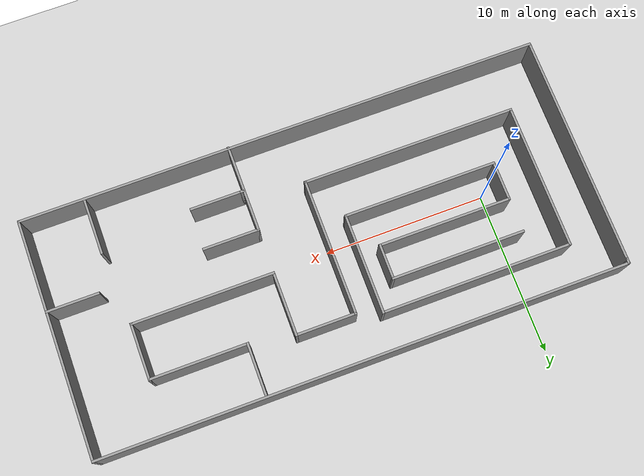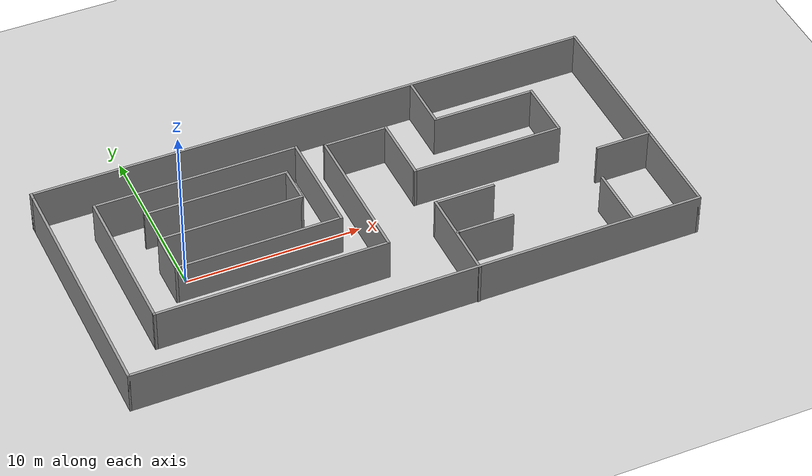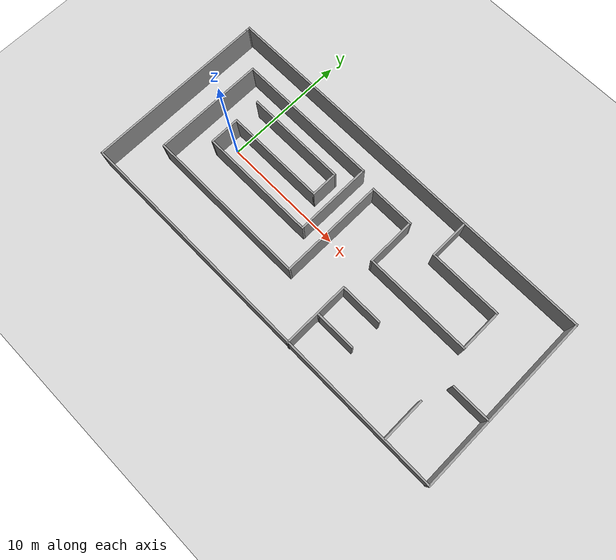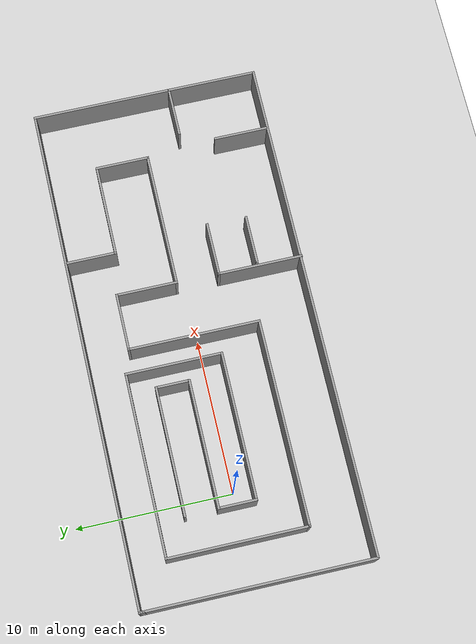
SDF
<sdf version="1.7">
 <world name="default">
  <light name="sun" type="directional">
   <pose>0 0 10 0 -0 0</pose>
   <diffuse>0.8 0.8 0.8 1</diffuse>
   <specular>0.2 0.2 0.2 1</specular>
   <attenuation>
    <range>1000</range>
    <constant>0.9</constant>
    <linear>0.01</linear>
    <quadratic>0.001</quadratic>
   </attenuation>
   <direction>-0.5 0.1 -0.9</direction>
   <spot><inner_angle>0</inner_angle><outer_angle>0</outer_angle><falloff>0</falloff></spot>
  </light>
  <model name="ground_plane">
   <static>1</static>
   <link name="link">
    <collision name="collision">
     <geometry><plane><normal>0 0 1</normal><size>100 100</size></plane></geometry>
     <surface>
      <contact><collide_bitmask>65535</collide_bitmask></contact>
      <friction><ode><mu>100</mu><mu2>50</mu2></ode></friction>
     </surface>
    </collision>
    <visual name="visual">
     <cast_shadows>0</cast_shadows>
     <geometry><plane><normal>0 0 1</normal><size>100 100</size></plane></geometry>
     <material>
      <script><uri>file://media/materials/scripts/gazebo.material</uri><name>Gazebo/Grey</name></script>
     </material>
    </visual>
   </link>
  </model>
  <gravity>0 0 -9.8</gravity>
  <magnetic_field>6e-06 2.3e-05 -4.2e-05</magnetic_field>
  <atmosphere type="adiabatic"/>
  <physics type="ode">
   <max_step_size>0.001</max_step_size>
   <real_time_factor>1</real_time_factor>
   <real_time_update_rate>1000</real_time_update_rate>
  </physics>
  <scene><ambient>0.4 0.4 0.4 1</ambient><background>0.7 0.7 0.7 1</background><shadows>1</shadows></scene>
  <spherical_coordinates>
   <surface_model>EARTH_WGS84</surface_model>
   <latitude_deg>0</latitude_deg>
   <longitude_deg>0</longitude_deg>
   <elevation>0</elevation>
   <heading_deg>0</heading_deg>
  </spherical_coordinates>
  <model name="Kobuki_maze">
   <pose>10.251 -0.20257 -0 0 -0 0</pose>
   <link name="Wall_10">
    <collision name="Wall_10_Collision">
     <geometry><box><size>3.5 0.15 2.5</size></box></geometry>
     <pose>0 0 1.25 0 -0 0</pose>
    </collision>
    <visual name="Wall_10_Visual">
     <pose>0 0 1.25 0 -0 0</pose>
     <geometry><box><size>3.5 0.15 2.5</size></box></geometry>
     <material>
      <script><uri>file://media/materials/scripts/gazebo.material</uri><name>Gazebo/Grey</name></script>
      <ambient>1 1 1 1</ambient>
     </material>
     <meta><layer>0</layer></meta>
    </visual>
    <pose>11.8634 2.43443 0 0 -0 -1.5708</pose>
   </link>
   <link name="Wall_11">
    <collision name="Wall_11_Collision">
     <geometry><box><size>8.75 0.15 2.5</size></box></geometry>
     <pose>0 0 1.25 0 -0 0</pose>
    </collision>
    <visual name="Wall_11_Visual">
     <pose>0 0 1.25 0 -0 0</pose>
     <geometry><box><size>8.75 0.15 2.5</size></box></geometry>
     <material>
      <script><uri>file://media/materials/scripts/gazebo.material</uri><name>Gazebo/Grey</name></script>
      <ambient>1 1 1 1</ambient>
     </material>
     <meta><layer>0</layer></meta>
    </visual>
    <pose>7.56341 0.759428 0 0 -0 3.14159</pose>
   </link>
   <link name="Wall_12">
    <collision name="Wall_12_Collision">
     <geometry><box><size>4 0.15 2.5</size></box></geometry>
     <pose>0 0 1.25 0 -0 0</pose>
    </collision>
    <visual name="Wall_12_Visual">
     <pose>0 0 1.25 0 -0 0</pose>
     <geometry><box><size>4 0.15 2.5</size></box></geometry>
     <material>
      <script><uri>file://media/materials/scripts/gazebo.material</uri><name>Gazebo/Grey</name></script>
      <ambient>1 1 1 1</ambient>
     </material>
     <meta><layer>0</layer></meta>
    </visual>
    <pose>3.26341 2.68443 0 0 -0 1.5708</pose>
   </link>
   <link name="Wall_13">
    <collision name="Wall_13_Collision">
     <geometry><box><size>3.75 0.15 2.5</size></box></geometry>
     <pose>0 0 1.25 0 -0 0</pose>
    </collision>
    <visual name="Wall_13_Visual">
     <pose>0 0 1.25 0 -0 0</pose>
     <geometry><box><size>3.75 0.15 2.5</size></box></geometry>
     <material>
      <script><uri>file://media/materials/scripts/gazebo.material</uri><name>Gazebo/Grey</name></script>
      <ambient>1 1 1 1</ambient>
     </material>
     <meta><layer>0</layer></meta>
    </visual>
    <pose>1.46341 4.60943 0 0 -0 3.14159</pose>
   </link>
   <link name="Wall_14">
    <collision name="Wall_14_Collision">
     <geometry><box><size>8.5 0.15 2.5</size></box></geometry>
     <pose>0 0 1.25 0 -0 0</pose>
    </collision>
    <visual name="Wall_14_Visual">
     <pose>0 0 1.25 0 -0 0</pose>
     <geometry><box><size>8.5 0.15 2.5</size></box></geometry>
     <material>
      <script><uri>file://media/materials/scripts/gazebo.material</uri><name>Gazebo/Grey</name></script>
      <ambient>1 1 1 1</ambient>
     </material>
     <meta><layer>0</layer></meta>
    </visual>
    <pose>-0.336591 0.434428 0 0 -0 -1.5708</pose>
   </link>
   <link name="Wall_15">
    <collision name="Wall_15_Collision">
     <geometry><box><size>13.25 0.15 2.5</size></box></geometry>
     <pose>0 0 1.25 0 -0 0</pose>
    </collision>
    <visual name="Wall_15_Visual">
     <pose>0 0 1.25 0 -0 0</pose>
     <geometry><box><size>13.25 0.15 2.5</size></box></geometry>
     <material>
      <script><uri>file://media/materials/scripts/gazebo.material</uri><name>Gazebo/Grey</name></script>
      <ambient>1 1 1 1</ambient>
     </material>
     <meta><layer>0</layer></meta>
    </visual>
    <pose>-6.88659 -3.74057 0 0 -0 3.14159</pose>
   </link>
   <link name="Wall_16">
    <collision name="Wall_16_Collision">
     <geometry><box><size>9 0.15 2.5</size></box></geometry>
     <pose>0 0 1.25 0 -0 0</pose>
    </collision>
    <visual name="Wall_16_Visual">
     <pose>0 0 1.25 0 -0 0</pose>
     <geometry><box><size>9 0.15 2.5</size></box></geometry>
     <material>
      <script><uri>file://media/materials/scripts/gazebo.material</uri><name>Gazebo/Grey</name></script>
      <ambient>1 1 1 1</ambient>
     </material>
     <meta><layer>0</layer></meta>
    </visual>
    <pose>-13.4366 0.684428 0 0 -0 1.5708</pose>
   </link>
   <link name="Wall_17">
    <collision name="Wall_17_Collision">
     <geometry><box><size>11.75 0.15 2.5</size></box></geometry>
     <pose>0 0 1.25 0 -0 0</pose>
    </collision>
    <visual name="Wall_17_Visual">
     <pose>0 0 1.25 0 -0 0</pose>
     <geometry><box><size>11.75 0.15 2.5</size></box></geometry>
     <material>
      <script><uri>file://media/materials/scripts/gazebo.material</uri><name>Gazebo/Grey</name></script>
      <ambient>1 1 1 1</ambient>
     </material>
     <meta><layer>0</layer></meta>
    </visual>
    <pose>-7.63659 5.10943 0 0 -0 0</pose>
   </link>
   <link name="Wall_18">
    <collision name="Wall_18_Collision">
     <geometry><box><size>6.25 0.15 2.5</size></box></geometry>
     <pose>0 0 1.25 0 -0 0</pose>
    </collision>
    <visual name="Wall_18_Visual">
     <pose>0 0 1.25 0 -0 0</pose>
     <geometry><box><size>6.25 0.15 2.5</size></box></geometry>
     <material>
      <script><uri>file://media/materials/scripts/gazebo.material</uri><name>Gazebo/Grey</name></script>
      <ambient>1 1 1 1</ambient>
     </material>
     <meta><layer>0</layer></meta>
    </visual>
    <pose>-1.83659 2.05943 0 0 -0 -1.5708</pose>
   </link>
   <link name="Wall_19">
    <collision name="Wall_19_Collision">
     <geometry><box><size>9.5 0.15 2.5</size></box></geometry>
     <pose>0 0 1.25 0 -0 0</pose>
    </collision>
    <visual name="Wall_19_Visual">
     <pose>0 0 1.25 0 -0 0</pose>
     <geometry><box><size>9.5 0.15 2.5</size></box></geometry>
     <material>
      <script><uri>file://media/materials/scripts/gazebo.material</uri><name>Gazebo/Grey</name></script>
      <ambient>1 1 1 1</ambient>
     </material>
     <meta><layer>0</layer></meta>
    </visual>
    <pose>-6.51159 -0.990572 0 0 -0 3.14159</pose>
   </link>
   <link name="Wall_2">
    <collision name="Wall_2_Collision">
     <geometry><box><size>14.5 0.15 2.5</size></box></geometry>
     <pose>0 0 1.25 0 -0 0</pose>
    </collision>
    <visual name="Wall_2_Visual">
     <pose>0 0 1.25 0 -0 0</pose>
     <geometry><box><size>14.5 0.15 2.5</size></box></geometry>
     <material>
      <script><uri>file://media/materials/scripts/gazebo.material</uri><name>Gazebo/Grey</name></script>
      <ambient>1 1 1 1</ambient>
     </material>
     <meta><layer>0</layer></meta>
    </visual>
    <pose>-16.175 -0.101012 0 0 -0 -1.5708</pose>
   </link>
   <link name="Wall_20">
    <collision name="Wall_20_Collision">
     <geometry><box><size>2.5 0.15 2.5</size></box></geometry>
     <pose>0 0 1.25 0 -0 0</pose>
    </collision>
    <visual name="Wall_20_Visual">
     <pose>0 0 1.25 0 -0 0</pose>
     <geometry><box><size>2.5 0.15 2.5</size></box></geometry>
     <material>
      <script><uri>file://media/materials/scripts/gazebo.material</uri><name>Gazebo/Grey</name></script>
      <ambient>1 1 1 1</ambient>
     </material>
     <meta><layer>0</layer></meta>
    </visual>
    <pose>-11.1866 0.184428 0 0 -0 1.5708</pose>
   </link>
   <link name="Wall_21">
    <collision name="Wall_21_Collision">
     <geometry><box><size>8.25 0.15 2.5</size></box></geometry>
     <pose>0 0 1.25 0 -0 0</pose>
    </collision>
    <visual name="Wall_21_Visual">
     <pose>0 0 1.25 0 -0 0</pose>
     <geometry><box><size>8.25 0.15 2.5</size></box></geometry>
     <material>
      <script><uri>file://media/materials/scripts/gazebo.material</uri><name>Gazebo/Grey</name></script>
      <ambient>1 1 1 1</ambient>
     </material>
     <meta><layer>0</layer></meta>
    </visual>
    <pose>-7.13659 1.35943 0 0 -0 0</pose>
   </link>
   <link name="Wall_22">
    <collision name="Wall_22_Collision">
     <geometry><box><size>2.25 0.15 2.5</size></box></geometry>
     <pose>0 0 1.25 0 -0 0</pose>
    </collision>
    <visual name="Wall_22_Visual">
     <pose>0 0 1.25 0 -0 0</pose>
     <geometry><box><size>2.25 0.15 2.5</size></box></geometry>
     <material>
      <script><uri>file://media/materials/scripts/gazebo.material</uri><name>Gazebo/Grey</name></script>
      <ambient>1 1 1 1</ambient>
     </material>
     <meta><layer>0</layer></meta>
    </visual>
    <pose>-3.08659 2.40943 0 0 -0 1.5708</pose>
   </link>
   <link name="Wall_23">
    <collision name="Wall_23_Collision">
     <geometry><box><size>8.25 0.15 2.5</size></box></geometry>
     <pose>0 0 1.25 0 -0 0</pose>
    </collision>
    <visual name="Wall_23_Visual">
     <pose>0 0 1.25 0 -0 0</pose>
     <geometry><box><size>8.25 0.15 2.5</size></box></geometry>
     <material>
      <script><uri>file://media/materials/scripts/gazebo.material</uri><name>Gazebo/Grey</name></script>
      <ambient>1 1 1 1</ambient>
     </material>
     <meta><layer>0</layer></meta>
    </visual>
    <pose>-7.13659 3.45943 0 0 -0 3.14159</pose>
   </link>
   <link name="Wall_25">
    <collision name="Wall_25_Collision">
     <geometry><box><size>5.5 0.15 2.5</size></box></geometry>
     <pose>0 0 1.25 0 -0 0</pose>
    </collision>
    <visual name="Wall_25_Visual">
     <pose>0 0 1.25 0 -0 0</pose>
     <geometry><box><size>5.5 0.15 2.5</size></box></geometry>
     <material>
      <script><uri>file://media/materials/scripts/gazebo.material</uri><name>Gazebo/Grey</name></script>
      <ambient>1 1 1 1</ambient>
     </material>
     <meta><layer>0</layer></meta>
    </visual>
    <pose>3.22197 -4.64899 0 0 -0 -1.5708</pose>
   </link>
   <link name="Wall_27">
    <collision name="Wall_27_Collision">
     <geometry><box><size>3.25 0.15 2.5</size></box></geometry>
     <pose>0 0 1.25 0 -0 0</pose>
    </collision>
    <visual name="Wall_27_Visual">
     <pose>0 0 1.25 0 -0 0</pose>
     <geometry><box><size>3.25 0.15 2.5</size></box></geometry>
     <material>
      <script><uri>file://media/materials/scripts/gazebo.material</uri><name>Gazebo/Grey</name></script>
      <ambient>1 1 1 1</ambient>
     </material>
     <meta><layer>0</layer></meta>
    </visual>
    <pose>4.94542 -4.5007 0 0 -0 0</pose>
   </link>
   <link name="Wall_29">
    <collision name="Wall_29_Collision">
     <geometry><box><size>0.25 0.15 2.5</size></box></geometry>
     <pose>0 0 1.25 0 -0 0</pose>
    </collision>
    <visual name="Wall_29_Visual">
     <pose>0 0 1.25 0 -0 0</pose>
     <geometry><box><size>0.25 0.15 2.5</size></box></geometry>
     <material>
      <script><uri>file://media/materials/scripts/gazebo.material</uri><name>Gazebo/Grey</name></script>
      <ambient>1 1 1 1</ambient>
     </material>
     <meta><layer>0</layer></meta>
    </visual>
    <pose>3.34542 -4.5007 0 0 -0 3.14159</pose>
   </link>
   <link name="Wall_3">
    <collision name="Wall_3_Collision">
     <geometry><box><size>32.5 0.15 2.5</size></box></geometry>
     <pose>0 0 1.25 0 -0 0</pose>
    </collision>
    <visual name="Wall_3_Visual">
     <pose>0 0 1.25 0 -0 0</pose>
     <geometry><box><size>32.5 0.15 2.5</size></box></geometry>
     <material>
      <script><uri>file://media/materials/scripts/gazebo.material</uri><name>Gazebo/Grey</name></script>
      <ambient>1 1 1 1</ambient>
     </material>
     <meta><layer>0</layer></meta>
    </visual>
    <pose>0 -7.27601 0 0 -0 0</pose>
   </link>
   <link name="Wall_31">
    <collision name="Wall_31_Collision">
     <geometry><box><size>3.5 0.15 2.5</size></box></geometry>
     <pose>0 0 1.25 0 -0 0</pose>
    </collision>
    <visual name="Wall_31_Visual">
     <pose>0 0 1.25 0 -0 0</pose>
     <geometry><box><size>3.5 0.15 2.5</size></box></geometry>
     <material>
      <script><uri>file://media/materials/scripts/gazebo.material</uri><name>Gazebo/Grey</name></script>
      <ambient>1 1 1 1</ambient>
     </material>
     <meta><layer>0</layer></meta>
    </visual>
    <pose>4.89697 -1.97399 0 0 -0 0</pose>
   </link>
   <link name="Wall_33">
    <collision name="Wall_33_Collision">
     <geometry><box><size>3.5 0.15 2.5</size></box></geometry>
     <pose>0 0 1.25 0 -0 0</pose>
    </collision>
    <visual name="Wall_33_Visual">
     <pose>0 0 1.25 0 -0 0</pose>
     <geometry><box><size>3.5 0.15 2.5</size></box></geometry>
     <material>
      <script><uri>file://media/materials/scripts/gazebo.material</uri><name>Gazebo/Grey</name></script>
      <ambient>1 1 1 1</ambient>
     </material>
     <meta><layer>0</layer></meta>
    </visual>
    <pose>12.1889 -5.48612 0 0 -0 -1.5708</pose>
   </link>
   <link name="Wall_35">
    <collision name="Wall_35_Collision">
     <geometry><box><size>3.25 0.15 2.5</size></box></geometry>
     <pose>0 0 1.25 0 -0 0</pose>
    </collision>
    <visual name="Wall_35_Visual">
     <pose>0 0 1.25 0 -0 0</pose>
     <geometry><box><size>3.25 0.15 2.5</size></box></geometry>
     <material>
      <script><uri>file://media/materials/scripts/gazebo.material</uri><name>Gazebo/Grey</name></script>
      <ambient>1 1 1 1</ambient>
     </material>
     <meta><layer>0</layer></meta>
    </visual>
    <pose>14.6184 -1.59485 0 0 -0 0</pose>
   </link>
   <link name="Wall_4">
    <collision name="Wall_4_Collision">
     <geometry><box><size>14.75 0.15 2.5</size></box></geometry>
     <pose>0 0 1.25 0 -0 0</pose>
    </collision>
    <visual name="Wall_4_Visual">
     <pose>0 0 1.25 0 -0 0</pose>
     <geometry><box><size>14.75 0.15 2.5</size></box></geometry>
     <material>
      <script><uri>file://media/materials/scripts/gazebo.material</uri><name>Gazebo/Grey</name></script>
      <ambient>1 1 1 1</ambient>
     </material>
     <meta><layer>0</layer></meta>
    </visual>
    <pose>16.175 0.023988 0 0 -0 1.5708</pose>
   </link>
   <link name="Wall_5">
    <collision name="Wall_5_Collision">
     <geometry><box><size>32.5 0.15 2.5</size></box></geometry>
     <pose>0 0 1.25 0 -0 0</pose>
    </collision>
    <visual name="Wall_5_Visual">
     <pose>0 0 1.25 0 -0 0</pose>
     <geometry><box><size>32.5 0.15 2.5</size></box></geometry>
     <material>
      <script><uri>file://media/materials/scripts/gazebo.material</uri><name>Gazebo/Grey</name></script>
      <ambient>1 1 1 1</ambient>
     </material>
     <meta><layer>0</layer></meta>
    </visual>
    <pose>0 7.32399 0 0 -0 3.14159</pose>
   </link>
   <link name="Wall_6">
    <collision name="Wall_6_Collision">
     <geometry><box><size>0.4 0.15 2.5</size></box></geometry>
     <pose>0 0 1.25 0 -0 0</pose>
    </collision>
    <visual name="Wall_6_Visual">
     <pose>0 0 1.25 0 -0 0</pose>
     <geometry><box><size>0.4 0.15 2.5</size></box></geometry>
     <material>
      <script><uri>file://media/materials/scripts/gazebo.material</uri><name>Gazebo/Grey</name></script>
      <ambient>1 1 1 1</ambient>
     </material>
     <meta><layer>0</layer></meta>
    </visual>
    <pose>-16.175 7.19899 0 0 -0 -1.5708</pose>
   </link>
   <link name="Wall_8">
    <collision name="Wall_8_Collision">
     <geometry><box><size>3.25 0.15 2.5</size></box></geometry>
     <pose>0 0 1.25 0 -0 0</pose>
    </collision>
    <visual name="Wall_8_Visual">
     <pose>0 0 1.25 0 -0 0</pose>
     <geometry><box><size>3.25 0.15 2.5</size></box></geometry>
     <material>
      <script><uri>file://media/materials/scripts/gazebo.material</uri><name>Gazebo/Grey</name></script>
      <ambient>1 1 1 1</ambient>
     </material>
     <meta><layer>0</layer></meta>
    </visual>
    <pose>6.01341 5.65943 0 0 -0 -1.5708</pose>
   </link>
   <link name="Wall_9">
    <collision name="Wall_9_Collision">
     <geometry><box><size>6 0.15 2.5</size></box></geometry>
     <pose>0 0 1.25 0 -0 0</pose>
    </collision>
    <visual name="Wall_9_Visual">
     <pose>0 0 1.25 0 -0 0</pose>
     <geometry><box><size>6 0.15 2.5</size></box></geometry>
     <material>
      <script><uri>file://media/materials/scripts/gazebo.material</uri><name>Gazebo/Grey</name></script>
      <ambient>1 1 1 1</ambient>
     </material>
     <meta><layer>0</layer></meta>
    </visual>
    <pose>8.93841 4.10943 0 0 -0 0</pose>
   </link>
   <static>1</static>
  </model>
 </world>
</sdf>
